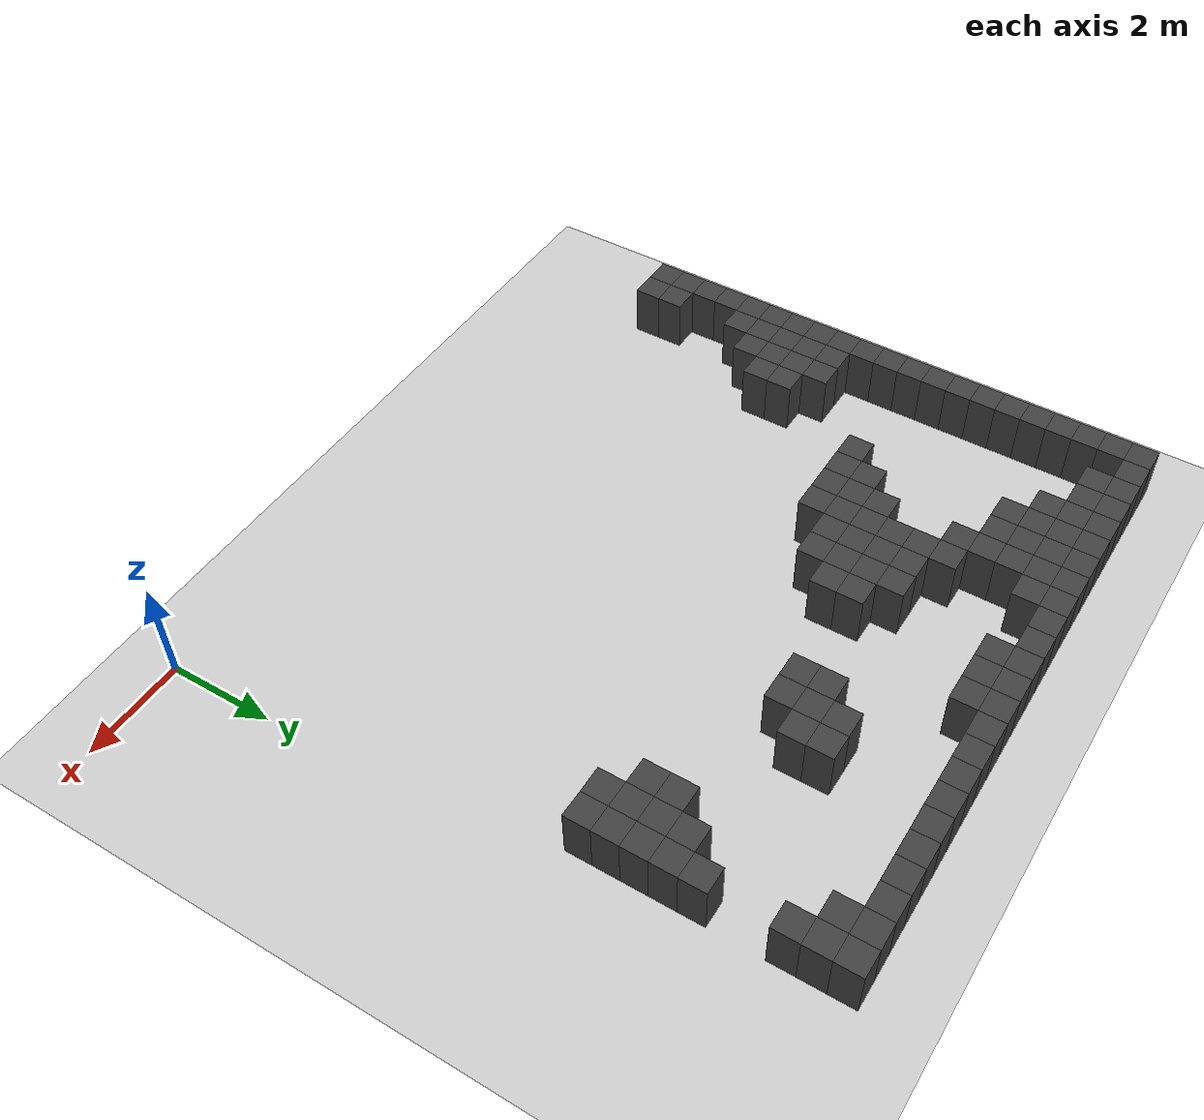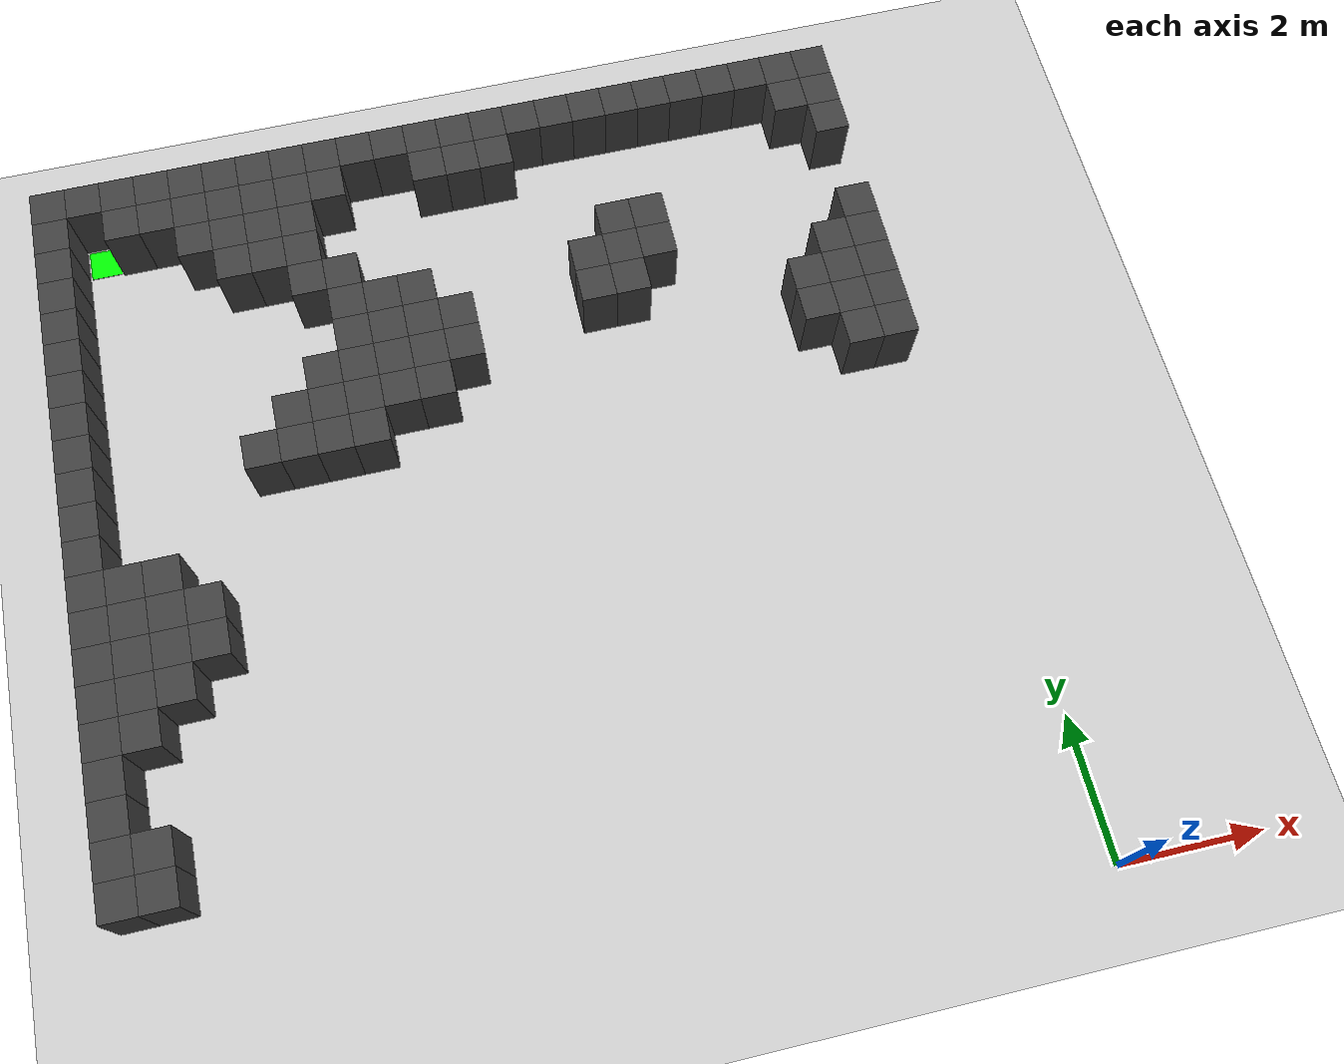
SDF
<sdf version="1.7">
 <world name="map_8074">
  <model name="ground_plane">
   <static>true</static>
   <link name="link">
    <collision name="collision">
     <geometry><plane><normal>0 0 1</normal><size>200 200</size></plane></geometry>
    </collision>
    <visual name="visual">
     <geometry><plane><normal>0 0 1</normal><size>200 200</size></plane></geometry>
     <material><ambient>0.8 0.8 0.8 1</ambient><diffuse>0.8 0.8 0.8 1</diffuse></material>
    </visual>
   </link>
  </model>
  <model name="maze_environment">
   <static>true</static>
   <link name="wall_0">
    <pose>-12.250 12.250 0.500 0 0 0</pose>
    <collision name="col"><geometry><box><size>0.5 0.5 1.0</size></box></geometry></collision>
    <visual name="vis">
     <geometry><box><size>0.5 0.5 1.0</size></box></geometry>
     <material><ambient>0.15 0.15 0.15 1</ambient><diffuse>0.25 0.25 0.25 1</diffuse></material>
    </visual>
   </link>
   <link name="wall_1">
    <pose>-11.750 12.250 0.500 0 0 0</pose>
    <collision name="col"><geometry><box><size>0.5 0.5 1.0</size></box></geometry></collision>
    <visual name="vis">
     <geometry><box><size>0.5 0.5 1.0</size></box></geometry>
     <material><ambient>0.15 0.15 0.15 1</ambient><diffuse>0.25 0.25 0.25 1</diffuse></material>
    </visual>
   </link>
   <link name="wall_2">
    <pose>-11.250 12.250 0.500 0 0 0</pose>
    <collision name="col"><geometry><box><size>0.5 0.5 1.0</size></box></geometry></collision>
    <visual name="vis">
     <geometry><box><size>0.5 0.5 1.0</size></box></geometry>
     <material><ambient>0.15 0.15 0.15 1</ambient><diffuse>0.25 0.25 0.25 1</diffuse></material>
    </visual>
   </link>
   <link name="wall_3">
    <pose>-10.750 12.250 0.500 0 0 0</pose>
    <collision name="col"><geometry><box><size>0.5 0.5 1.0</size></box></geometry></collision>
    <visual name="vis">
     <geometry><box><size>0.5 0.5 1.0</size></box></geometry>
     <material><ambient>0.15 0.15 0.15 1</ambient><diffuse>0.25 0.25 0.25 1</diffuse></material>
    </visual>
   </link>
   <link name="wall_4">
    <pose>-10.250 12.250 0.500 0 0 0</pose>
    <collision name="col"><geometry><box><size>0.5 0.5 1.0</size></box></geometry></collision>
    <visual name="vis">
     <geometry><box><size>0.5 0.5 1.0</size></box></geometry>
     <material><ambient>0.15 0.15 0.15 1</ambient><diffuse>0.25 0.25 0.25 1</diffuse></material>
    </visual>
   </link>
   <link name="wall_5">
    <pose>-9.750 12.250 0.500 0 0 0</pose>
    <collision name="col"><geometry><box><size>0.5 0.5 1.0</size></box></geometry></collision>
    <visual name="vis">
     <geometry><box><size>0.5 0.5 1.0</size></box></geometry>
     <material><ambient>0.15 0.15 0.15 1</ambient><diffuse>0.25 0.25 0.25 1</diffuse></material>
    </visual>
   </link>
   <link name="wall_6">
    <pose>-9.250 12.250 0.500 0 0 0</pose>
    <collision name="col"><geometry><box><size>0.5 0.5 1.0</size></box></geometry></collision>
    <visual name="vis">
     <geometry><box><size>0.5 0.5 1.0</size></box></geometry>
     <material><ambient>0.15 0.15 0.15 1</ambient><diffuse>0.25 0.25 0.25 1</diffuse></material>
    </visual>
   </link>
   <link name="wall_7">
    <pose>-8.750 12.250 0.500 0 0 0</pose>
    <collision name="col"><geometry><box><size>0.5 0.5 1.0</size></box></geometry></collision>
    <visual name="vis">
     <geometry><box><size>0.5 0.5 1.0</size></box></geometry>
     <material><ambient>0.15 0.15 0.15 1</ambient><diffuse>0.25 0.25 0.25 1</diffuse></material>
    </visual>
   </link>
   <link name="wall_8">
    <pose>-8.250 12.250 0.500 0 0 0</pose>
    <collision name="col"><geometry><box><size>0.5 0.5 1.0</size></box></geometry></collision>
    <visual name="vis">
     <geometry><box><size>0.5 0.5 1.0</size></box></geometry>
     <material><ambient>0.15 0.15 0.15 1</ambient><diffuse>0.25 0.25 0.25 1</diffuse></material>
    </visual>
   </link>
   <link name="wall_9">
    <pose>-7.750 12.250 0.500 0 0 0</pose>
    <collision name="col"><geometry><box><size>0.5 0.5 1.0</size></box></geometry></collision>
    <visual name="vis">
     <geometry><box><size>0.5 0.5 1.0</size></box></geometry>
     <material><ambient>0.15 0.15 0.15 1</ambient><diffuse>0.25 0.25 0.25 1</diffuse></material>
    </visual>
   </link>
   <link name="wall_10">
    <pose>-7.250 12.250 0.500 0 0 0</pose>
    <collision name="col"><geometry><box><size>0.5 0.5 1.0</size></box></geometry></collision>
    <visual name="vis">
     <geometry><box><size>0.5 0.5 1.0</size></box></geometry>
     <material><ambient>0.15 0.15 0.15 1</ambient><diffuse>0.25 0.25 0.25 1</diffuse></material>
    </visual>
   </link>
   <link name="wall_11">
    <pose>-6.750 12.250 0.500 0 0 0</pose>
    <collision name="col"><geometry><box><size>0.5 0.5 1.0</size></box></geometry></collision>
    <visual name="vis">
     <geometry><box><size>0.5 0.5 1.0</size></box></geometry>
     <material><ambient>0.15 0.15 0.15 1</ambient><diffuse>0.25 0.25 0.25 1</diffuse></material>
    </visual>
   </link>
   <link name="wall_12">
    <pose>-6.250 12.250 0.500 0 0 0</pose>
    <collision name="col"><geometry><box><size>0.5 0.5 1.0</size></box></geometry></collision>
    <visual name="vis">
     <geometry><box><size>0.5 0.5 1.0</size></box></geometry>
     <material><ambient>0.15 0.15 0.15 1</ambient><diffuse>0.25 0.25 0.25 1</diffuse></material>
    </visual>
   </link>
   <link name="wall_13">
    <pose>-5.750 12.250 0.500 0 0 0</pose>
    <collision name="col"><geometry><box><size>0.5 0.5 1.0</size></box></geometry></collision>
    <visual name="vis">
     <geometry><box><size>0.5 0.5 1.0</size></box></geometry>
     <material><ambient>0.15 0.15 0.15 1</ambient><diffuse>0.25 0.25 0.25 1</diffuse></material>
    </visual>
   </link>
   <link name="wall_14">
    <pose>-5.250 12.250 0.500 0 0 0</pose>
    <collision name="col"><geometry><box><size>0.5 0.5 1.0</size></box></geometry></collision>
    <visual name="vis">
     <geometry><box><size>0.5 0.5 1.0</size></box></geometry>
     <material><ambient>0.15 0.15 0.15 1</ambient><diffuse>0.25 0.25 0.25 1</diffuse></material>
    </visual>
   </link>
   <link name="wall_15">
    <pose>-4.750 12.250 0.500 0 0 0</pose>
    <collision name="col"><geometry><box><size>0.5 0.5 1.0</size></box></geometry></collision>
    <visual name="vis">
     <geometry><box><size>0.5 0.5 1.0</size></box></geometry>
     <material><ambient>0.15 0.15 0.15 1</ambient><diffuse>0.25 0.25 0.25 1</diffuse></material>
    </visual>
   </link>
   <link name="wall_16">
    <pose>-4.250 12.250 0.500 0 0 0</pose>
    <collision name="col"><geometry><box><size>0.5 0.5 1.0</size></box></geometry></collision>
    <visual name="vis">
     <geometry><box><size>0.5 0.5 1.0</size></box></geometry>
     <material><ambient>0.15 0.15 0.15 1</ambient><diffuse>0.25 0.25 0.25 1</diffuse></material>
    </visual>
   </link>
   <link name="wall_17">
    <pose>-3.750 12.250 0.500 0 0 0</pose>
    <collision name="col"><geometry><box><size>0.5 0.5 1.0</size></box></geometry></collision>
    <visual name="vis">
     <geometry><box><size>0.5 0.5 1.0</size></box></geometry>
     <material><ambient>0.15 0.15 0.15 1</ambient><diffuse>0.25 0.25 0.25 1</diffuse></material>
    </visual>
   </link>
   <link name="wall_18">
    <pose>-3.250 12.250 0.500 0 0 0</pose>
    <collision name="col"><geometry><box><size>0.5 0.5 1.0</size></box></geometry></collision>
    <visual name="vis">
     <geometry><box><size>0.5 0.5 1.0</size></box></geometry>
     <material><ambient>0.15 0.15 0.15 1</ambient><diffuse>0.25 0.25 0.25 1</diffuse></material>
    </visual>
   </link>
   <link name="wall_19">
    <pose>-2.750 12.250 0.500 0 0 0</pose>
    <collision name="col"><geometry><box><size>0.5 0.5 1.0</size></box></geometry></collision>
    <visual name="vis">
     <geometry><box><size>0.5 0.5 1.0</size></box></geometry>
     <material><ambient>0.15 0.15 0.15 1</ambient><diffuse>0.25 0.25 0.25 1</diffuse></material>
    </visual>
   </link>
   <link name="wall_20">
    <pose>-2.250 12.250 0.500 0 0 0</pose>
    <collision name="col"><geometry><box><size>0.5 0.5 1.0</size></box></geometry></collision>
    <visual name="vis">
     <geometry><box><size>0.5 0.5 1.0</size></box></geometry>
     <material><ambient>0.15 0.15 0.15 1</ambient><diffuse>0.25 0.25 0.25 1</diffuse></material>
    </visual>
   </link>
   <link name="wall_21">
    <pose>-1.750 12.250 0.500 0 0 0</pose>
    <collision name="col"><geometry><box><size>0.5 0.5 1.0</size></box></geometry></collision>
    <visual name="vis">
     <geometry><box><size>0.5 0.5 1.0</size></box></geometry>
     <material><ambient>0.15 0.15 0.15 1</ambient><diffuse>0.25 0.25 0.25 1</diffuse></material>
    </visual>
   </link>
   <link name="wall_22">
    <pose>-1.250 12.250 0.500 0 0 0</pose>
    <collision name="col"><geometry><box><size>0.5 0.5 1.0</size></box></geometry></collision>
    <visual name="vis">
     <geometry><box><size>0.5 0.5 1.0</size></box></geometry>
     <material><ambient>0.15 0.15 0.15 1</ambient><diffuse>0.25 0.25 0.25 1</diffuse></material>
    </visual>
   </link>
   <link name="wall_23">
    <pose>-0.750 12.250 0.500 0 0 0</pose>
    <collision name="col"><geometry><box><size>0.5 0.5 1.0</size></box></geometry></collision>
    <visual name="vis">
     <geometry><box><size>0.5 0.5 1.0</size></box></geometry>
     <material><ambient>0.15 0.15 0.15 1</ambient><diffuse>0.25 0.25 0.25 1</diffuse></material>
    </visual>
   </link>
   <link name="wall_50">
    <pose>-12.250 11.750 0.500 0 0 0</pose>
    <collision name="col"><geometry><box><size>0.5 0.5 1.0</size></box></geometry></collision>
    <visual name="vis">
     <geometry><box><size>0.5 0.5 1.0</size></box></geometry>
     <material><ambient>0.15 0.15 0.15 1</ambient><diffuse>0.25 0.25 0.25 1</diffuse></material>
    </visual>
   </link>
   <link name="wall_51">
    <pose>-11.250 11.750 0.500 0 0 0</pose>
    <collision name="col"><geometry><box><size>0.5 0.5 1.0</size></box></geometry></collision>
    <visual name="vis">
     <geometry><box><size>0.5 0.5 1.0</size></box></geometry>
     <material><ambient>0.15 0.15 0.15 1</ambient><diffuse>0.25 0.25 0.25 1</diffuse></material>
    </visual>
   </link>
   <link name="wall_52">
    <pose>-10.750 11.750 0.500 0 0 0</pose>
    <collision name="col"><geometry><box><size>0.5 0.5 1.0</size></box></geometry></collision>
    <visual name="vis">
     <geometry><box><size>0.5 0.5 1.0</size></box></geometry>
     <material><ambient>0.15 0.15 0.15 1</ambient><diffuse>0.25 0.25 0.25 1</diffuse></material>
    </visual>
   </link>
   <link name="wall_53">
    <pose>-10.250 11.750 0.500 0 0 0</pose>
    <collision name="col"><geometry><box><size>0.5 0.5 1.0</size></box></geometry></collision>
    <visual name="vis">
     <geometry><box><size>0.5 0.5 1.0</size></box></geometry>
     <material><ambient>0.15 0.15 0.15 1</ambient><diffuse>0.25 0.25 0.25 1</diffuse></material>
    </visual>
   </link>
   <link name="wall_54">
    <pose>-9.750 11.750 0.500 0 0 0</pose>
    <collision name="col"><geometry><box><size>0.5 0.5 1.0</size></box></geometry></collision>
    <visual name="vis">
     <geometry><box><size>0.5 0.5 1.0</size></box></geometry>
     <material><ambient>0.15 0.15 0.15 1</ambient><diffuse>0.25 0.25 0.25 1</diffuse></material>
    </visual>
   </link>
   <link name="wall_55">
    <pose>-9.250 11.750 0.500 0 0 0</pose>
    <collision name="col"><geometry><box><size>0.5 0.5 1.0</size></box></geometry></collision>
    <visual name="vis">
     <geometry><box><size>0.5 0.5 1.0</size></box></geometry>
     <material><ambient>0.15 0.15 0.15 1</ambient><diffuse>0.25 0.25 0.25 1</diffuse></material>
    </visual>
   </link>
   <link name="wall_56">
    <pose>-8.750 11.750 0.500 0 0 0</pose>
    <collision name="col"><geometry><box><size>0.5 0.5 1.0</size></box></geometry></collision>
    <visual name="vis">
     <geometry><box><size>0.5 0.5 1.0</size></box></geometry>
     <material><ambient>0.15 0.15 0.15 1</ambient><diffuse>0.25 0.25 0.25 1</diffuse></material>
    </visual>
   </link>
   <link name="wall_57">
    <pose>-8.250 11.750 0.500 0 0 0</pose>
    <collision name="col"><geometry><box><size>0.5 0.5 1.0</size></box></geometry></collision>
    <visual name="vis">
     <geometry><box><size>0.5 0.5 1.0</size></box></geometry>
     <material><ambient>0.15 0.15 0.15 1</ambient><diffuse>0.25 0.25 0.25 1</diffuse></material>
    </visual>
   </link>
   <link name="wall_58">
    <pose>-6.750 11.750 0.500 0 0 0</pose>
    <collision name="col"><geometry><box><size>0.5 0.5 1.0</size></box></geometry></collision>
    <visual name="vis">
     <geometry><box><size>0.5 0.5 1.0</size></box></geometry>
     <material><ambient>0.15 0.15 0.15 1</ambient><diffuse>0.25 0.25 0.25 1</diffuse></material>
    </visual>
   </link>
   <link name="wall_59">
    <pose>-6.250 11.750 0.500 0 0 0</pose>
    <collision name="col"><geometry><box><size>0.5 0.5 1.0</size></box></geometry></collision>
    <visual name="vis">
     <geometry><box><size>0.5 0.5 1.0</size></box></geometry>
     <material><ambient>0.15 0.15 0.15 1</ambient><diffuse>0.25 0.25 0.25 1</diffuse></material>
    </visual>
   </link>
   <link name="wall_60">
    <pose>-5.750 11.750 0.500 0 0 0</pose>
    <collision name="col"><geometry><box><size>0.5 0.5 1.0</size></box></geometry></collision>
    <visual name="vis">
     <geometry><box><size>0.5 0.5 1.0</size></box></geometry>
     <material><ambient>0.15 0.15 0.15 1</ambient><diffuse>0.25 0.25 0.25 1</diffuse></material>
    </visual>
   </link>
   <link name="wall_61">
    <pose>-1.250 11.750 0.500 0 0 0</pose>
    <collision name="col"><geometry><box><size>0.5 0.5 1.0</size></box></geometry></collision>
    <visual name="vis">
     <geometry><box><size>0.5 0.5 1.0</size></box></geometry>
     <material><ambient>0.15 0.15 0.15 1</ambient><diffuse>0.25 0.25 0.25 1</diffuse></material>
    </visual>
   </link>
   <link name="wall_62">
    <pose>-0.750 11.750 0.500 0 0 0</pose>
    <collision name="col"><geometry><box><size>0.5 0.5 1.0</size></box></geometry></collision>
    <visual name="vis">
     <geometry><box><size>0.5 0.5 1.0</size></box></geometry>
     <material><ambient>0.15 0.15 0.15 1</ambient><diffuse>0.25 0.25 0.25 1</diffuse></material>
    </visual>
   </link>
   <link name="wall_86">
    <pose>-12.250 11.250 0.500 0 0 0</pose>
    <collision name="col"><geometry><box><size>0.5 0.5 1.0</size></box></geometry></collision>
    <visual name="vis">
     <geometry><box><size>0.5 0.5 1.0</size></box></geometry>
     <material><ambient>0.15 0.15 0.15 1</ambient><diffuse>0.25 0.25 0.25 1</diffuse></material>
    </visual>
   </link>
   <link name="wall_87">
    <pose>-10.250 11.250 0.500 0 0 0</pose>
    <collision name="col"><geometry><box><size>0.5 0.5 1.0</size></box></geometry></collision>
    <visual name="vis">
     <geometry><box><size>0.5 0.5 1.0</size></box></geometry>
     <material><ambient>0.15 0.15 0.15 1</ambient><diffuse>0.25 0.25 0.25 1</diffuse></material>
    </visual>
   </link>
   <link name="wall_88">
    <pose>-9.750 11.250 0.500 0 0 0</pose>
    <collision name="col"><geometry><box><size>0.5 0.5 1.0</size></box></geometry></collision>
    <visual name="vis">
     <geometry><box><size>0.5 0.5 1.0</size></box></geometry>
     <material><ambient>0.15 0.15 0.15 1</ambient><diffuse>0.25 0.25 0.25 1</diffuse></material>
    </visual>
   </link>
   <link name="wall_89">
    <pose>-9.250 11.250 0.500 0 0 0</pose>
    <collision name="col"><geometry><box><size>0.5 0.5 1.0</size></box></geometry></collision>
    <visual name="vis">
     <geometry><box><size>0.5 0.5 1.0</size></box></geometry>
     <material><ambient>0.15 0.15 0.15 1</ambient><diffuse>0.25 0.25 0.25 1</diffuse></material>
    </visual>
   </link>
   <link name="wall_90">
    <pose>-8.750 11.250 0.500 0 0 0</pose>
    <collision name="col"><geometry><box><size>0.5 0.5 1.0</size></box></geometry></collision>
    <visual name="vis">
     <geometry><box><size>0.5 0.5 1.0</size></box></geometry>
     <material><ambient>0.15 0.15 0.15 1</ambient><diffuse>0.25 0.25 0.25 1</diffuse></material>
    </visual>
   </link>
   <link name="wall_91">
    <pose>-0.750 11.250 0.500 0 0 0</pose>
    <collision name="col"><geometry><box><size>0.5 0.5 1.0</size></box></geometry></collision>
    <visual name="vis">
     <geometry><box><size>0.5 0.5 1.0</size></box></geometry>
     <material><ambient>0.15 0.15 0.15 1</ambient><diffuse>0.25 0.25 0.25 1</diffuse></material>
    </visual>
   </link>
   <link name="wall_111">
    <pose>-12.250 10.750 0.500 0 0 0</pose>
    <collision name="col"><geometry><box><size>0.5 0.5 1.0</size></box></geometry></collision>
    <visual name="vis">
     <geometry><box><size>0.5 0.5 1.0</size></box></geometry>
     <material><ambient>0.15 0.15 0.15 1</ambient><diffuse>0.25 0.25 0.25 1</diffuse></material>
    </visual>
   </link>
   <link name="wall_112">
    <pose>-9.750 10.750 0.500 0 0 0</pose>
    <collision name="col"><geometry><box><size>0.5 0.5 1.0</size></box></geometry></collision>
    <visual name="vis">
     <geometry><box><size>0.5 0.5 1.0</size></box></geometry>
     <material><ambient>0.15 0.15 0.15 1</ambient><diffuse>0.25 0.25 0.25 1</diffuse></material>
    </visual>
   </link>
   <link name="wall_113">
    <pose>-9.250 10.750 0.500 0 0 0</pose>
    <collision name="col"><geometry><box><size>0.5 0.5 1.0</size></box></geometry></collision>
    <visual name="vis">
     <geometry><box><size>0.5 0.5 1.0</size></box></geometry>
     <material><ambient>0.15 0.15 0.15 1</ambient><diffuse>0.25 0.25 0.25 1</diffuse></material>
    </visual>
   </link>
   <link name="wall_114">
    <pose>-8.750 10.750 0.500 0 0 0</pose>
    <collision name="col"><geometry><box><size>0.5 0.5 1.0</size></box></geometry></collision>
    <visual name="vis">
     <geometry><box><size>0.5 0.5 1.0</size></box></geometry>
     <material><ambient>0.15 0.15 0.15 1</ambient><diffuse>0.25 0.25 0.25 1</diffuse></material>
    </visual>
   </link>
   <link name="wall_129">
    <pose>-12.250 10.250 0.500 0 0 0</pose>
    <collision name="col"><geometry><box><size>0.5 0.5 1.0</size></box></geometry></collision>
    <visual name="vis">
     <geometry><box><size>0.5 0.5 1.0</size></box></geometry>
     <material><ambient>0.15 0.15 0.15 1</ambient><diffuse>0.25 0.25 0.25 1</diffuse></material>
    </visual>
   </link>
   <link name="wall_130">
    <pose>-8.750 10.250 0.500 0 0 0</pose>
    <collision name="col"><geometry><box><size>0.5 0.5 1.0</size></box></geometry></collision>
    <visual name="vis">
     <geometry><box><size>0.5 0.5 1.0</size></box></geometry>
     <material><ambient>0.15 0.15 0.15 1</ambient><diffuse>0.25 0.25 0.25 1</diffuse></material>
    </visual>
   </link>
   <link name="wall_131">
    <pose>-8.250 10.250 0.500 0 0 0</pose>
    <collision name="col"><geometry><box><size>0.5 0.5 1.0</size></box></geometry></collision>
    <visual name="vis">
     <geometry><box><size>0.5 0.5 1.0</size></box></geometry>
     <material><ambient>0.15 0.15 0.15 1</ambient><diffuse>0.25 0.25 0.25 1</diffuse></material>
    </visual>
   </link>
   <link name="wall_132">
    <pose>-4.250 10.250 0.500 0 0 0</pose>
    <collision name="col"><geometry><box><size>0.5 0.5 1.0</size></box></geometry></collision>
    <visual name="vis">
     <geometry><box><size>0.5 0.5 1.0</size></box></geometry>
     <material><ambient>0.15 0.15 0.15 1</ambient><diffuse>0.25 0.25 0.25 1</diffuse></material>
    </visual>
   </link>
   <link name="wall_133">
    <pose>-3.750 10.250 0.500 0 0 0</pose>
    <collision name="col"><geometry><box><size>0.5 0.5 1.0</size></box></geometry></collision>
    <visual name="vis">
     <geometry><box><size>0.5 0.5 1.0</size></box></geometry>
     <material><ambient>0.15 0.15 0.15 1</ambient><diffuse>0.25 0.25 0.25 1</diffuse></material>
    </visual>
   </link>
   <link name="wall_145">
    <pose>-12.250 9.750 0.500 0 0 0</pose>
    <collision name="col"><geometry><box><size>0.5 0.5 1.0</size></box></geometry></collision>
    <visual name="vis">
     <geometry><box><size>0.5 0.5 1.0</size></box></geometry>
     <material><ambient>0.15 0.15 0.15 1</ambient><diffuse>0.25 0.25 0.25 1</diffuse></material>
    </visual>
   </link>
   <link name="wall_146">
    <pose>-8.250 9.750 0.500 0 0 0</pose>
    <collision name="col"><geometry><box><size>0.5 0.5 1.0</size></box></geometry></collision>
    <visual name="vis">
     <geometry><box><size>0.5 0.5 1.0</size></box></geometry>
     <material><ambient>0.15 0.15 0.15 1</ambient><diffuse>0.25 0.25 0.25 1</diffuse></material>
    </visual>
   </link>
   <link name="wall_147">
    <pose>-7.750 9.750 0.500 0 0 0</pose>
    <collision name="col"><geometry><box><size>0.5 0.5 1.0</size></box></geometry></collision>
    <visual name="vis">
     <geometry><box><size>0.5 0.5 1.0</size></box></geometry>
     <material><ambient>0.15 0.15 0.15 1</ambient><diffuse>0.25 0.25 0.25 1</diffuse></material>
    </visual>
   </link>
   <link name="wall_148">
    <pose>-7.250 9.750 0.500 0 0 0</pose>
    <collision name="col"><geometry><box><size>0.5 0.5 1.0</size></box></geometry></collision>
    <visual name="vis">
     <geometry><box><size>0.5 0.5 1.0</size></box></geometry>
     <material><ambient>0.15 0.15 0.15 1</ambient><diffuse>0.25 0.25 0.25 1</diffuse></material>
    </visual>
   </link>
   <link name="wall_149">
    <pose>-4.750 9.750 0.500 0 0 0</pose>
    <collision name="col"><geometry><box><size>0.5 0.5 1.0</size></box></geometry></collision>
    <visual name="vis">
     <geometry><box><size>0.5 0.5 1.0</size></box></geometry>
     <material><ambient>0.15 0.15 0.15 1</ambient><diffuse>0.25 0.25 0.25 1</diffuse></material>
    </visual>
   </link>
   <link name="wall_150">
    <pose>-4.250 9.750 0.500 0 0 0</pose>
    <collision name="col"><geometry><box><size>0.5 0.5 1.0</size></box></geometry></collision>
    <visual name="vis">
     <geometry><box><size>0.5 0.5 1.0</size></box></geometry>
     <material><ambient>0.15 0.15 0.15 1</ambient><diffuse>0.25 0.25 0.25 1</diffuse></material>
    </visual>
   </link>
   <link name="wall_151">
    <pose>-3.750 9.750 0.500 0 0 0</pose>
    <collision name="col"><geometry><box><size>0.5 0.5 1.0</size></box></geometry></collision>
    <visual name="vis">
     <geometry><box><size>0.5 0.5 1.0</size></box></geometry>
     <material><ambient>0.15 0.15 0.15 1</ambient><diffuse>0.25 0.25 0.25 1</diffuse></material>
    </visual>
   </link>
   <link name="wall_152">
    <pose>-0.750 9.750 0.500 0 0 0</pose>
    <collision name="col"><geometry><box><size>0.5 0.5 1.0</size></box></geometry></collision>
    <visual name="vis">
     <geometry><box><size>0.5 0.5 1.0</size></box></geometry>
     <material><ambient>0.15 0.15 0.15 1</ambient><diffuse>0.25 0.25 0.25 1</diffuse></material>
    </visual>
   </link>
   <link name="wall_162">
    <pose>-12.250 9.250 0.500 0 0 0</pose>
    <collision name="col"><geometry><box><size>0.5 0.5 1.0</size></box></geometry></collision>
    <visual name="vis">
     <geometry><box><size>0.5 0.5 1.0</size></box></geometry>
     <material><ambient>0.15 0.15 0.15 1</ambient><diffuse>0.25 0.25 0.25 1</diffuse></material>
    </visual>
   </link>
   <link name="wall_163">
    <pose>-8.250 9.250 0.500 0 0 0</pose>
    <collision name="col"><geometry><box><size>0.5 0.5 1.0</size></box></geometry></collision>
    <visual name="vis">
     <geometry><box><size>0.5 0.5 1.0</size></box></geometry>
     <material><ambient>0.15 0.15 0.15 1</ambient><diffuse>0.25 0.25 0.25 1</diffuse></material>
    </visual>
   </link>
   <link name="wall_164">
    <pose>-7.750 9.250 0.500 0 0 0</pose>
    <collision name="col"><geometry><box><size>0.5 0.5 1.0</size></box></geometry></collision>
    <visual name="vis">
     <geometry><box><size>0.5 0.5 1.0</size></box></geometry>
     <material><ambient>0.15 0.15 0.15 1</ambient><diffuse>0.25 0.25 0.25 1</diffuse></material>
    </visual>
   </link>
   <link name="wall_165">
    <pose>-7.250 9.250 0.500 0 0 0</pose>
    <collision name="col"><geometry><box><size>0.5 0.5 1.0</size></box></geometry></collision>
    <visual name="vis">
     <geometry><box><size>0.5 0.5 1.0</size></box></geometry>
     <material><ambient>0.15 0.15 0.15 1</ambient><diffuse>0.25 0.25 0.25 1</diffuse></material>
    </visual>
   </link>
   <link name="wall_166">
    <pose>-6.750 9.250 0.500 0 0 0</pose>
    <collision name="col"><geometry><box><size>0.5 0.5 1.0</size></box></geometry></collision>
    <visual name="vis">
     <geometry><box><size>0.5 0.5 1.0</size></box></geometry>
     <material><ambient>0.15 0.15 0.15 1</ambient><diffuse>0.25 0.25 0.25 1</diffuse></material>
    </visual>
   </link>
   <link name="wall_167">
    <pose>-4.750 9.250 0.500 0 0 0</pose>
    <collision name="col"><geometry><box><size>0.5 0.5 1.0</size></box></geometry></collision>
    <visual name="vis">
     <geometry><box><size>0.5 0.5 1.0</size></box></geometry>
     <material><ambient>0.15 0.15 0.15 1</ambient><diffuse>0.25 0.25 0.25 1</diffuse></material>
    </visual>
   </link>
   <link name="wall_168">
    <pose>-4.250 9.250 0.500 0 0 0</pose>
    <collision name="col"><geometry><box><size>0.5 0.5 1.0</size></box></geometry></collision>
    <visual name="vis">
     <geometry><box><size>0.5 0.5 1.0</size></box></geometry>
     <material><ambient>0.15 0.15 0.15 1</ambient><diffuse>0.25 0.25 0.25 1</diffuse></material>
    </visual>
   </link>
   <link name="wall_169">
    <pose>-1.250 9.250 0.500 0 0 0</pose>
    <collision name="col"><geometry><box><size>0.5 0.5 1.0</size></box></geometry></collision>
    <visual name="vis">
     <geometry><box><size>0.5 0.5 1.0</size></box></geometry>
     <material><ambient>0.15 0.15 0.15 1</ambient><diffuse>0.25 0.25 0.25 1</diffuse></material>
    </visual>
   </link>
   <link name="wall_170">
    <pose>-0.750 9.250 0.500 0 0 0</pose>
    <collision name="col"><geometry><box><size>0.5 0.5 1.0</size></box></geometry></collision>
    <visual name="vis">
     <geometry><box><size>0.5 0.5 1.0</size></box></geometry>
     <material><ambient>0.15 0.15 0.15 1</ambient><diffuse>0.25 0.25 0.25 1</diffuse></material>
    </visual>
   </link>
   <link name="wall_177">
    <pose>-12.250 8.750 0.500 0 0 0</pose>
    <collision name="col"><geometry><box><size>0.5 0.5 1.0</size></box></geometry></collision>
    <visual name="vis">
     <geometry><box><size>0.5 0.5 1.0</size></box></geometry>
     <material><ambient>0.15 0.15 0.15 1</ambient><diffuse>0.25 0.25 0.25 1</diffuse></material>
    </visual>
   </link>
   <link name="wall_178">
    <pose>-8.750 8.750 0.500 0 0 0</pose>
    <collision name="col"><geometry><box><size>0.5 0.5 1.0</size></box></geometry></collision>
    <visual name="vis">
     <geometry><box><size>0.5 0.5 1.0</size></box></geometry>
     <material><ambient>0.15 0.15 0.15 1</ambient><diffuse>0.25 0.25 0.25 1</diffuse></material>
    </visual>
   </link>
   <link name="wall_179">
    <pose>-8.250 8.750 0.500 0 0 0</pose>
    <collision name="col"><geometry><box><size>0.5 0.5 1.0</size></box></geometry></collision>
    <visual name="vis">
     <geometry><box><size>0.5 0.5 1.0</size></box></geometry>
     <material><ambient>0.15 0.15 0.15 1</ambient><diffuse>0.25 0.25 0.25 1</diffuse></material>
    </visual>
   </link>
   <link name="wall_180">
    <pose>-7.750 8.750 0.500 0 0 0</pose>
    <collision name="col"><geometry><box><size>0.5 0.5 1.0</size></box></geometry></collision>
    <visual name="vis">
     <geometry><box><size>0.5 0.5 1.0</size></box></geometry>
     <material><ambient>0.15 0.15 0.15 1</ambient><diffuse>0.25 0.25 0.25 1</diffuse></material>
    </visual>
   </link>
   <link name="wall_181">
    <pose>-7.250 8.750 0.500 0 0 0</pose>
    <collision name="col"><geometry><box><size>0.5 0.5 1.0</size></box></geometry></collision>
    <visual name="vis">
     <geometry><box><size>0.5 0.5 1.0</size></box></geometry>
     <material><ambient>0.15 0.15 0.15 1</ambient><diffuse>0.25 0.25 0.25 1</diffuse></material>
    </visual>
   </link>
   <link name="wall_182">
    <pose>-6.750 8.750 0.500 0 0 0</pose>
    <collision name="col"><geometry><box><size>0.5 0.5 1.0</size></box></geometry></collision>
    <visual name="vis">
     <geometry><box><size>0.5 0.5 1.0</size></box></geometry>
     <material><ambient>0.15 0.15 0.15 1</ambient><diffuse>0.25 0.25 0.25 1</diffuse></material>
    </visual>
   </link>
   <link name="wall_183">
    <pose>-1.750 8.750 0.500 0 0 0</pose>
    <collision name="col"><geometry><box><size>0.5 0.5 1.0</size></box></geometry></collision>
    <visual name="vis">
     <geometry><box><size>0.5 0.5 1.0</size></box></geometry>
     <material><ambient>0.15 0.15 0.15 1</ambient><diffuse>0.25 0.25 0.25 1</diffuse></material>
    </visual>
   </link>
   <link name="wall_184">
    <pose>-1.250 8.750 0.500 0 0 0</pose>
    <collision name="col"><geometry><box><size>0.5 0.5 1.0</size></box></geometry></collision>
    <visual name="vis">
     <geometry><box><size>0.5 0.5 1.0</size></box></geometry>
     <material><ambient>0.15 0.15 0.15 1</ambient><diffuse>0.25 0.25 0.25 1</diffuse></material>
    </visual>
   </link>
   <link name="wall_185">
    <pose>-0.750 8.750 0.500 0 0 0</pose>
    <collision name="col"><geometry><box><size>0.5 0.5 1.0</size></box></geometry></collision>
    <visual name="vis">
     <geometry><box><size>0.5 0.5 1.0</size></box></geometry>
     <material><ambient>0.15 0.15 0.15 1</ambient><diffuse>0.25 0.25 0.25 1</diffuse></material>
    </visual>
   </link>
   <link name="wall_190">
    <pose>-12.250 8.250 0.500 0 0 0</pose>
    <collision name="col"><geometry><box><size>0.5 0.5 1.0</size></box></geometry></collision>
    <visual name="vis">
     <geometry><box><size>0.5 0.5 1.0</size></box></geometry>
     <material><ambient>0.15 0.15 0.15 1</ambient><diffuse>0.25 0.25 0.25 1</diffuse></material>
    </visual>
   </link>
   <link name="wall_191">
    <pose>-9.250 8.250 0.500 0 0 0</pose>
    <collision name="col"><geometry><box><size>0.5 0.5 1.0</size></box></geometry></collision>
    <visual name="vis">
     <geometry><box><size>0.5 0.5 1.0</size></box></geometry>
     <material><ambient>0.15 0.15 0.15 1</ambient><diffuse>0.25 0.25 0.25 1</diffuse></material>
    </visual>
   </link>
   <link name="wall_192">
    <pose>-8.750 8.250 0.500 0 0 0</pose>
    <collision name="col"><geometry><box><size>0.5 0.5 1.0</size></box></geometry></collision>
    <visual name="vis">
     <geometry><box><size>0.5 0.5 1.0</size></box></geometry>
     <material><ambient>0.15 0.15 0.15 1</ambient><diffuse>0.25 0.25 0.25 1</diffuse></material>
    </visual>
   </link>
   <link name="wall_193">
    <pose>-8.250 8.250 0.500 0 0 0</pose>
    <collision name="col"><geometry><box><size>0.5 0.5 1.0</size></box></geometry></collision>
    <visual name="vis">
     <geometry><box><size>0.5 0.5 1.0</size></box></geometry>
     <material><ambient>0.15 0.15 0.15 1</ambient><diffuse>0.25 0.25 0.25 1</diffuse></material>
    </visual>
   </link>
   <link name="wall_194">
    <pose>-7.750 8.250 0.500 0 0 0</pose>
    <collision name="col"><geometry><box><size>0.5 0.5 1.0</size></box></geometry></collision>
    <visual name="vis">
     <geometry><box><size>0.5 0.5 1.0</size></box></geometry>
     <material><ambient>0.15 0.15 0.15 1</ambient><diffuse>0.25 0.25 0.25 1</diffuse></material>
    </visual>
   </link>
   <link name="wall_195">
    <pose>-7.250 8.250 0.500 0 0 0</pose>
    <collision name="col"><geometry><box><size>0.5 0.5 1.0</size></box></geometry></collision>
    <visual name="vis">
     <geometry><box><size>0.5 0.5 1.0</size></box></geometry>
     <material><ambient>0.15 0.15 0.15 1</ambient><diffuse>0.25 0.25 0.25 1</diffuse></material>
    </visual>
   </link>
   <link name="wall_196">
    <pose>-1.750 8.250 0.500 0 0 0</pose>
    <collision name="col"><geometry><box><size>0.5 0.5 1.0</size></box></geometry></collision>
    <visual name="vis">
     <geometry><box><size>0.5 0.5 1.0</size></box></geometry>
     <material><ambient>0.15 0.15 0.15 1</ambient><diffuse>0.25 0.25 0.25 1</diffuse></material>
    </visual>
   </link>
   <link name="wall_197">
    <pose>-1.250 8.250 0.500 0 0 0</pose>
    <collision name="col"><geometry><box><size>0.5 0.5 1.0</size></box></geometry></collision>
    <visual name="vis">
     <geometry><box><size>0.5 0.5 1.0</size></box></geometry>
     <material><ambient>0.15 0.15 0.15 1</ambient><diffuse>0.25 0.25 0.25 1</diffuse></material>
    </visual>
   </link>
   <link name="wall_198">
    <pose>-0.750 8.250 0.500 0 0 0</pose>
    <collision name="col"><geometry><box><size>0.5 0.5 1.0</size></box></geometry></collision>
    <visual name="vis">
     <geometry><box><size>0.5 0.5 1.0</size></box></geometry>
     <material><ambient>0.15 0.15 0.15 1</ambient><diffuse>0.25 0.25 0.25 1</diffuse></material>
    </visual>
   </link>
   <link name="wall_202">
    <pose>-12.250 7.750 0.500 0 0 0</pose>
    <collision name="col"><geometry><box><size>0.5 0.5 1.0</size></box></geometry></collision>
    <visual name="vis">
     <geometry><box><size>0.5 0.5 1.0</size></box></geometry>
     <material><ambient>0.15 0.15 0.15 1</ambient><diffuse>0.25 0.25 0.25 1</diffuse></material>
    </visual>
   </link>
   <link name="wall_203">
    <pose>-9.750 7.750 0.500 0 0 0</pose>
    <collision name="col"><geometry><box><size>0.5 0.5 1.0</size></box></geometry></collision>
    <visual name="vis">
     <geometry><box><size>0.5 0.5 1.0</size></box></geometry>
     <material><ambient>0.15 0.15 0.15 1</ambient><diffuse>0.25 0.25 0.25 1</diffuse></material>
    </visual>
   </link>
   <link name="wall_204">
    <pose>-9.250 7.750 0.500 0 0 0</pose>
    <collision name="col"><geometry><box><size>0.5 0.5 1.0</size></box></geometry></collision>
    <visual name="vis">
     <geometry><box><size>0.5 0.5 1.0</size></box></geometry>
     <material><ambient>0.15 0.15 0.15 1</ambient><diffuse>0.25 0.25 0.25 1</diffuse></material>
    </visual>
   </link>
   <link name="wall_205">
    <pose>-8.750 7.750 0.500 0 0 0</pose>
    <collision name="col"><geometry><box><size>0.5 0.5 1.0</size></box></geometry></collision>
    <visual name="vis">
     <geometry><box><size>0.5 0.5 1.0</size></box></geometry>
     <material><ambient>0.15 0.15 0.15 1</ambient><diffuse>0.25 0.25 0.25 1</diffuse></material>
    </visual>
   </link>
   <link name="wall_206">
    <pose>-8.250 7.750 0.500 0 0 0</pose>
    <collision name="col"><geometry><box><size>0.5 0.5 1.0</size></box></geometry></collision>
    <visual name="vis">
     <geometry><box><size>0.5 0.5 1.0</size></box></geometry>
     <material><ambient>0.15 0.15 0.15 1</ambient><diffuse>0.25 0.25 0.25 1</diffuse></material>
    </visual>
   </link>
   <link name="wall_207">
    <pose>-1.250 7.750 0.500 0 0 0</pose>
    <collision name="col"><geometry><box><size>0.5 0.5 1.0</size></box></geometry></collision>
    <visual name="vis">
     <geometry><box><size>0.5 0.5 1.0</size></box></geometry>
     <material><ambient>0.15 0.15 0.15 1</ambient><diffuse>0.25 0.25 0.25 1</diffuse></material>
    </visual>
   </link>
   <link name="wall_208">
    <pose>-0.750 7.750 0.500 0 0 0</pose>
    <collision name="col"><geometry><box><size>0.5 0.5 1.0</size></box></geometry></collision>
    <visual name="vis">
     <geometry><box><size>0.5 0.5 1.0</size></box></geometry>
     <material><ambient>0.15 0.15 0.15 1</ambient><diffuse>0.25 0.25 0.25 1</diffuse></material>
    </visual>
   </link>
   <link name="wall_214">
    <pose>-12.250 7.250 0.500 0 0 0</pose>
    <collision name="col"><geometry><box><size>0.5 0.5 1.0</size></box></geometry></collision>
    <visual name="vis">
     <geometry><box><size>0.5 0.5 1.0</size></box></geometry>
     <material><ambient>0.15 0.15 0.15 1</ambient><diffuse>0.25 0.25 0.25 1</diffuse></material>
    </visual>
   </link>
   <link name="wall_225">
    <pose>-12.250 6.750 0.500 0 0 0</pose>
    <collision name="col"><geometry><box><size>0.5 0.5 1.0</size></box></geometry></collision>
    <visual name="vis">
     <geometry><box><size>0.5 0.5 1.0</size></box></geometry>
     <material><ambient>0.15 0.15 0.15 1</ambient><diffuse>0.25 0.25 0.25 1</diffuse></material>
    </visual>
   </link>
   <link name="wall_239">
    <pose>-12.250 6.250 0.500 0 0 0</pose>
    <collision name="col"><geometry><box><size>0.5 0.5 1.0</size></box></geometry></collision>
    <visual name="vis">
     <geometry><box><size>0.5 0.5 1.0</size></box></geometry>
     <material><ambient>0.15 0.15 0.15 1</ambient><diffuse>0.25 0.25 0.25 1</diffuse></material>
    </visual>
   </link>
   <link name="wall_240">
    <pose>-11.750 6.250 0.500 0 0 0</pose>
    <collision name="col"><geometry><box><size>0.5 0.5 1.0</size></box></geometry></collision>
    <visual name="vis">
     <geometry><box><size>0.5 0.5 1.0</size></box></geometry>
     <material><ambient>0.15 0.15 0.15 1</ambient><diffuse>0.25 0.25 0.25 1</diffuse></material>
    </visual>
   </link>
   <link name="wall_241">
    <pose>-11.250 6.250 0.500 0 0 0</pose>
    <collision name="col"><geometry><box><size>0.5 0.5 1.0</size></box></geometry></collision>
    <visual name="vis">
     <geometry><box><size>0.5 0.5 1.0</size></box></geometry>
     <material><ambient>0.15 0.15 0.15 1</ambient><diffuse>0.25 0.25 0.25 1</diffuse></material>
    </visual>
   </link>
   <link name="wall_254">
    <pose>-12.250 5.750 0.500 0 0 0</pose>
    <collision name="col"><geometry><box><size>0.5 0.5 1.0</size></box></geometry></collision>
    <visual name="vis">
     <geometry><box><size>0.5 0.5 1.0</size></box></geometry>
     <material><ambient>0.15 0.15 0.15 1</ambient><diffuse>0.25 0.25 0.25 1</diffuse></material>
    </visual>
   </link>
   <link name="wall_255">
    <pose>-11.750 5.750 0.500 0 0 0</pose>
    <collision name="col"><geometry><box><size>0.5 0.5 1.0</size></box></geometry></collision>
    <visual name="vis">
     <geometry><box><size>0.5 0.5 1.0</size></box></geometry>
     <material><ambient>0.15 0.15 0.15 1</ambient><diffuse>0.25 0.25 0.25 1</diffuse></material>
    </visual>
   </link>
   <link name="wall_256">
    <pose>-11.250 5.750 0.500 0 0 0</pose>
    <collision name="col"><geometry><box><size>0.5 0.5 1.0</size></box></geometry></collision>
    <visual name="vis">
     <geometry><box><size>0.5 0.5 1.0</size></box></geometry>
     <material><ambient>0.15 0.15 0.15 1</ambient><diffuse>0.25 0.25 0.25 1</diffuse></material>
    </visual>
   </link>
   <link name="wall_257">
    <pose>-10.750 5.750 0.500 0 0 0</pose>
    <collision name="col"><geometry><box><size>0.5 0.5 1.0</size></box></geometry></collision>
    <visual name="vis">
     <geometry><box><size>0.5 0.5 1.0</size></box></geometry>
     <material><ambient>0.15 0.15 0.15 1</ambient><diffuse>0.25 0.25 0.25 1</diffuse></material>
    </visual>
   </link>
   <link name="wall_268">
    <pose>-12.250 5.250 0.500 0 0 0</pose>
    <collision name="col"><geometry><box><size>0.5 0.5 1.0</size></box></geometry></collision>
    <visual name="vis">
     <geometry><box><size>0.5 0.5 1.0</size></box></geometry>
     <material><ambient>0.15 0.15 0.15 1</ambient><diffuse>0.25 0.25 0.25 1</diffuse></material>
    </visual>
   </link>
   <link name="wall_269">
    <pose>-11.750 5.250 0.500 0 0 0</pose>
    <collision name="col"><geometry><box><size>0.5 0.5 1.0</size></box></geometry></collision>
    <visual name="vis">
     <geometry><box><size>0.5 0.5 1.0</size></box></geometry>
     <material><ambient>0.15 0.15 0.15 1</ambient><diffuse>0.25 0.25 0.25 1</diffuse></material>
    </visual>
   </link>
   <link name="wall_270">
    <pose>-11.250 5.250 0.500 0 0 0</pose>
    <collision name="col"><geometry><box><size>0.5 0.5 1.0</size></box></geometry></collision>
    <visual name="vis">
     <geometry><box><size>0.5 0.5 1.0</size></box></geometry>
     <material><ambient>0.15 0.15 0.15 1</ambient><diffuse>0.25 0.25 0.25 1</diffuse></material>
    </visual>
   </link>
   <link name="wall_271">
    <pose>-10.750 5.250 0.500 0 0 0</pose>
    <collision name="col"><geometry><box><size>0.5 0.5 1.0</size></box></geometry></collision>
    <visual name="vis">
     <geometry><box><size>0.5 0.5 1.0</size></box></geometry>
     <material><ambient>0.15 0.15 0.15 1</ambient><diffuse>0.25 0.25 0.25 1</diffuse></material>
    </visual>
   </link>
   <link name="wall_277">
    <pose>-12.250 4.750 0.500 0 0 0</pose>
    <collision name="col"><geometry><box><size>0.5 0.5 1.0</size></box></geometry></collision>
    <visual name="vis">
     <geometry><box><size>0.5 0.5 1.0</size></box></geometry>
     <material><ambient>0.15 0.15 0.15 1</ambient><diffuse>0.25 0.25 0.25 1</diffuse></material>
    </visual>
   </link>
   <link name="wall_278">
    <pose>-11.750 4.750 0.500 0 0 0</pose>
    <collision name="col"><geometry><box><size>0.5 0.5 1.0</size></box></geometry></collision>
    <visual name="vis">
     <geometry><box><size>0.5 0.5 1.0</size></box></geometry>
     <material><ambient>0.15 0.15 0.15 1</ambient><diffuse>0.25 0.25 0.25 1</diffuse></material>
    </visual>
   </link>
   <link name="wall_279">
    <pose>-11.250 4.750 0.500 0 0 0</pose>
    <collision name="col"><geometry><box><size>0.5 0.5 1.0</size></box></geometry></collision>
    <visual name="vis">
     <geometry><box><size>0.5 0.5 1.0</size></box></geometry>
     <material><ambient>0.15 0.15 0.15 1</ambient><diffuse>0.25 0.25 0.25 1</diffuse></material>
    </visual>
   </link>
   <link name="wall_284">
    <pose>-12.250 4.250 0.500 0 0 0</pose>
    <collision name="col"><geometry><box><size>0.5 0.5 1.0</size></box></geometry></collision>
    <visual name="vis">
     <geometry><box><size>0.5 0.5 1.0</size></box></geometry>
     <material><ambient>0.15 0.15 0.15 1</ambient><diffuse>0.25 0.25 0.25 1</diffuse></material>
    </visual>
   </link>
   <link name="wall_285">
    <pose>-11.750 4.250 0.500 0 0 0</pose>
    <collision name="col"><geometry><box><size>0.5 0.5 1.0</size></box></geometry></collision>
    <visual name="vis">
     <geometry><box><size>0.5 0.5 1.0</size></box></geometry>
     <material><ambient>0.15 0.15 0.15 1</ambient><diffuse>0.25 0.25 0.25 1</diffuse></material>
    </visual>
   </link>
   <link name="wall_291">
    <pose>-12.250 3.750 0.500 0 0 0</pose>
    <collision name="col"><geometry><box><size>0.5 0.5 1.0</size></box></geometry></collision>
    <visual name="vis">
     <geometry><box><size>0.5 0.5 1.0</size></box></geometry>
     <material><ambient>0.15 0.15 0.15 1</ambient><diffuse>0.25 0.25 0.25 1</diffuse></material>
    </visual>
   </link>
   <link name="wall_297">
    <pose>-12.250 3.250 0.500 0 0 0</pose>
    <collision name="col"><geometry><box><size>0.5 0.5 1.0</size></box></geometry></collision>
    <visual name="vis">
     <geometry><box><size>0.5 0.5 1.0</size></box></geometry>
     <material><ambient>0.15 0.15 0.15 1</ambient><diffuse>0.25 0.25 0.25 1</diffuse></material>
    </visual>
   </link>
   <link name="wall_304">
    <pose>-12.250 2.750 0.500 0 0 0</pose>
    <collision name="col"><geometry><box><size>0.5 0.5 1.0</size></box></geometry></collision>
    <visual name="vis">
     <geometry><box><size>0.5 0.5 1.0</size></box></geometry>
     <material><ambient>0.15 0.15 0.15 1</ambient><diffuse>0.25 0.25 0.25 1</diffuse></material>
    </visual>
   </link>
   <link name="wall_305">
    <pose>-11.750 2.750 0.500 0 0 0</pose>
    <collision name="col"><geometry><box><size>0.5 0.5 1.0</size></box></geometry></collision>
    <visual name="vis">
     <geometry><box><size>0.5 0.5 1.0</size></box></geometry>
     <material><ambient>0.15 0.15 0.15 1</ambient><diffuse>0.25 0.25 0.25 1</diffuse></material>
    </visual>
   </link>
   <link name="wall_315">
    <pose>-12.250 2.250 0.500 0 0 0</pose>
    <collision name="col"><geometry><box><size>0.5 0.5 1.0</size></box></geometry></collision>
    <visual name="vis">
     <geometry><box><size>0.5 0.5 1.0</size></box></geometry>
     <material><ambient>0.15 0.15 0.15 1</ambient><diffuse>0.25 0.25 0.25 1</diffuse></material>
    </visual>
   </link>
   <link name="wall_316">
    <pose>-11.750 2.250 0.500 0 0 0</pose>
    <collision name="col"><geometry><box><size>0.5 0.5 1.0</size></box></geometry></collision>
    <visual name="vis">
     <geometry><box><size>0.5 0.5 1.0</size></box></geometry>
     <material><ambient>0.15 0.15 0.15 1</ambient><diffuse>0.25 0.25 0.25 1</diffuse></material>
    </visual>
   </link>
   <link name="start_zone">
    <pose>-11.750 11.750 0.005 0 0 0</pose>
    <visual name="vis">
     <geometry><box><size>0.45 0.45 0.01</size></box></geometry>
     <material>
      <ambient>0.0 1.0 0.0 1</ambient>
      <diffuse>0.0 1.0 0.0 1</diffuse>
      <emissive>0.00 0.60 0.00 1</emissive>
     </material>
    </visual>
   </link>
  </model>
 </world>
</sdf>
